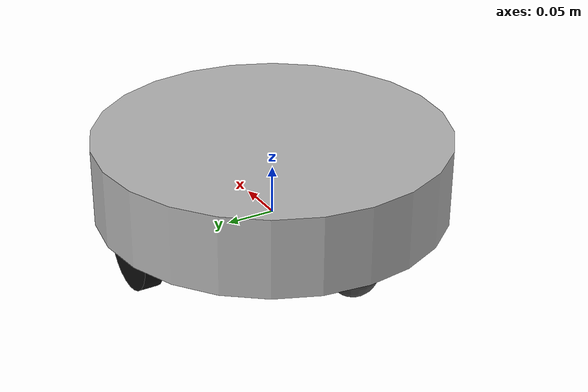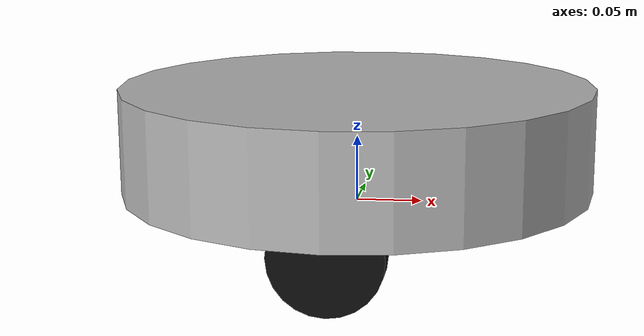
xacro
<?xml version="1.0"?>
<robot xmlns:xacro="http://ros.org/wiki/xacro" name="pylesos">

  <!-- === Константы === -->
  <xacro:property name="base_radius" value="0.18"/>
  <xacro:property name="base_length" value="0.08"/>
  <xacro:property name="wheel_radius" value="0.04"/>
  <xacro:property name="wheel_length" value="0.02"/>
  <xacro:property name="caster_radius" value="0.025"/>  <!-- маленькое колесо -->
  <xacro:property name="wheel_offset_y" value="0.15"/>
  <xacro:property name="caster_offset_x" value="-0.15"/> <!-- немного назад -->
  <xacro:property name="caster_offset_z" value="0.01"/> <!-- чуть ниже базы -->

  <xacro:property name="silver_color" value="0.7 0.7 0.7 1.0"/>
  <xacro:property name="black_color" value="0.05 0.05 0.05 1.0"/>
  <xacro:property name="darkgray_color" value="0.3 0.3 0.3 1.0"/>

  <!-- === Материалы === -->
  <material name="silver">
    <color rgba="${silver_color}"/>
  </material>
  <material name="black">
    <color rgba="${black_color}"/>
  </material>
  <material name="darkgray">
    <color rgba="${darkgray_color}"/>
  </material>

  <!-- === Макрос для основного колеса === -->
  <xacro:macro name="wheel" params="name y material">
    <link name="${name}">
      <visual>
        <origin xyz="0 0 0" rpy="1.5708 0 0"/>
        <geometry>
          <cylinder radius="${wheel_radius}" length="${wheel_length}"/>
        </geometry>
        <material name="${material}"/>
      </visual>
      <collision>
        <origin xyz="0 0 0" rpy="1.5708 0 0"/>
        <geometry>
          <cylinder radius="${wheel_radius}" length="${wheel_length}"/>
        </geometry>
      </collision>
      <inertial>
        <mass value="0.1"/>
        <inertia ixx="0.001" ixy="0" ixz="0" iyy="0.001" iyz="0" izz="0.001"/>
      </inertial>
    </link>
    <joint name="${name}_joint" type="continuous">
      <parent link="base_link"/>
      <child link="${name}"/>
      <origin xyz="0 ${y} 0" rpy="0 0 0"/>
      <axis xyz="0 1 0"/>
    </joint>
  </xacro:macro>

  <!-- === База === -->
  <link name="base_link">
    <visual>
      <origin xyz="0 0 0.05"/>
      <geometry>
        <cylinder radius="${base_radius}" length="${base_length}"/>
      </geometry>
      <material name="silver"/>
    </visual>
    <collision>
      <origin xyz="0 0 0.05"/>
      <geometry>
        <cylinder radius="${base_radius}" length="${base_length}"/>
      </geometry>
    </collision>
    <inertial>
      <mass value="2.0"/>
      <inertia ixx="0.02" ixy="0" ixz="0" iyy="0.02" iyz="0" izz="0.03"/>
    </inertial>
  </link>

  <!-- === Основные колеса === -->
  <xacro:wheel name="left_wheel"  y="${wheel_offset_y}" material="black"/>
  <xacro:wheel name="right_wheel" y="-${wheel_offset_y}" material="black"/>

  <!-- === Опорное колесо === -->
  <link name="caster_wheel">
    <visual>
      <origin xyz="0 0 0" rpy="0 0 0"/>
      <geometry>
        <sphere radius="${caster_radius}"/>
      </geometry>
      <material name="darkgray"/>
    </visual>
    <collision>
      <origin xyz="0 0 0" rpy="0 0 0"/>
      <geometry>
        <sphere radius="${caster_radius}"/>
      </geometry>
    </collision>
    <inertial>
      <mass value="0.05"/>
      <inertia ixx="0.00002" ixy="0" ixz="0" iyy="0.00002" iyz="0" izz="0.00002"/>
    </inertial>
  </link>

  <!-- === Шарнир крепления caster === -->
  <joint name="caster_joint" type="continuous">
    <parent link="base_link"/>
    <child link="caster_wheel"/>
    <!-- сдвигаем назад и чуть ниже базы -->
    <origin xyz="${caster_offset_x} 0 ${caster_offset_z}"/>
    <axis xyz="0 0 1"/>
  </joint>

</robot>
